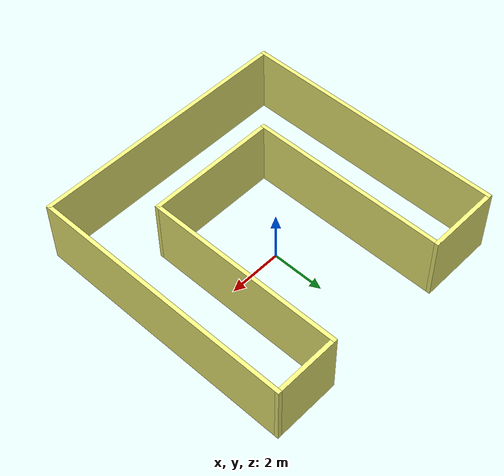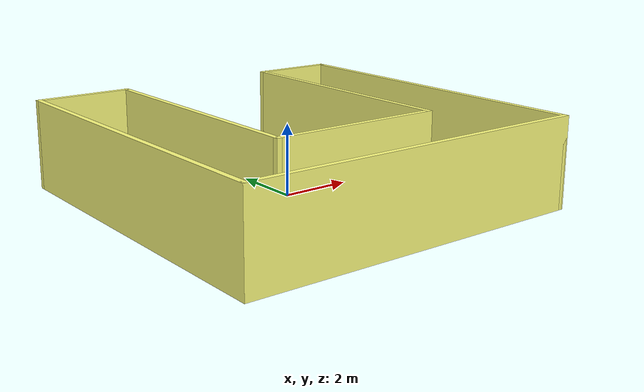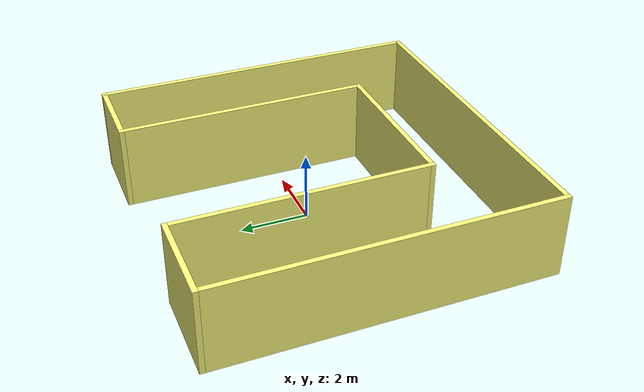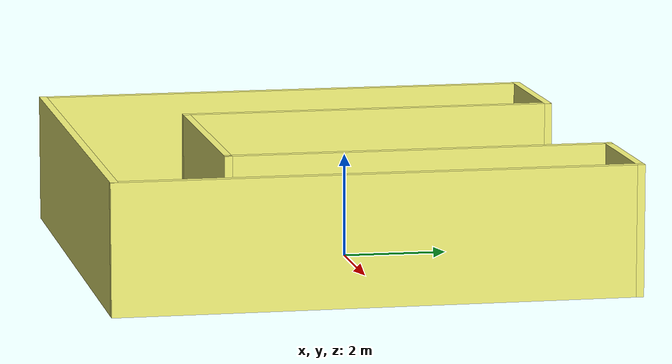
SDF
<?xml version='1.0'?>
<sdf version='1.6'>
  <model name='Gazebo_World_Layout'>
    <pose frame=''>-0.048927 -0.306153 0 0 -0 0</pose>
    <link name='Wall_10'>
      <collision name='Wall_10_Collision'>
        <geometry>
          <box>
            <size>7.5 0.15 2.5</size>
          </box>
        </geometry>
        <pose frame=''>0 0 1.25 0 -0 0</pose>
      </collision>
      <visual name='Wall_10_Visual'>
        <pose frame=''>0 0 1.25 0 -0 0</pose>
        <geometry>
          <box>
            <size>7.5 0.15 2.5</size>
          </box>
        </geometry>
        <material>
          <script>
            <uri>file://media/materials/scripts/gazebo.material</uri>
            <name>Gazebo/Grey</name>
          </script>
          <ambient>1 1 0.498039 1</ambient>
        </material>
        <meta>
          <layer>0</layer>
        </meta>
      </visual>
      <pose frame=''>2.575 1.25 0 0 0 -1.5708</pose>
    </link>
    <link name='Wall_11'>
      <collision name='Wall_11_Collision'>
        <geometry>
          <box>
            <size>5 0.15 2.5</size>
          </box>
        </geometry>
        <pose frame=''>0 0 1.25 0 -0 0</pose>
      </collision>
      <visual name='Wall_11_Visual'>
        <pose frame=''>0 0 1.25 0 -0 0</pose>
        <geometry>
          <box>
            <size>5 0.15 2.5</size>
          </box>
        </geometry>
        <material>
          <script>
            <uri>file://media/materials/scripts/gazebo.material</uri>
            <name>Gazebo/Grey</name>
          </script>
          <ambient>1 1 0.498039 1</ambient>
        </material>
        <meta>
          <layer>0</layer>
        </meta>
      </visual>
      <pose frame=''>0.15 -2.425 0 0 -0 3.14159</pose>
    </link>
    <link name='Wall_12'>
      <collision name='Wall_12_Collision'>
        <geometry>
          <box>
            <size>7.48097 0.15 2.5</size>
          </box>
        </geometry>
        <pose frame=''>0 0 1.25 0 -0 0</pose>
      </collision>
      <visual name='Wall_12_Visual'>
        <pose frame=''>0 0 1.25 0 -0 0</pose>
        <geometry>
          <box>
            <size>7.48097 0.15 2.5</size>
          </box>
        </geometry>
        <material>
          <script>
            <uri>file://media/materials/scripts/gazebo.material</uri>
            <name>Gazebo/Grey</name>
          </script>
          <ambient>1 1 0.498039 1</ambient>
        </material>
        <meta>
          <layer>0</layer>
        </meta>
      </visual>
      <pose frame=''>-2.275 1.24049 0 0 -0 1.5708</pose>
    </link>
    <link name='Wall_13'>
      <collision name='Wall_13_Collision'>
        <geometry>
          <box>
            <size>2.8 0.15 2.5</size>
          </box>
        </geometry>
        <pose frame=''>0 0 1.25 0 -0 0</pose>
      </collision>
      <visual name='Wall_13_Visual'>
        <pose frame=''>0 0 1.25 0 -0 0</pose>
        <geometry>
          <box>
            <size>2.8 0.15 2.5</size>
          </box>
        </geometry>
        <material>
          <script>
            <uri>file://media/materials/scripts/gazebo.material</uri>
            <name>Gazebo/Grey</name>
          </script>
          <ambient>1 1 0.498039 1</ambient>
        </material>
        <meta>
          <layer>0</layer>
        </meta>
      </visual>
      <pose frame=''>-3.6 4.92118 0 0 -0 3.14159</pose>
    </link>
    <link name='Wall_6'>
      <collision name='Wall_6_Collision'>
        <geometry>
          <box>
            <size>9.98097 0.15 2.5</size>
          </box>
        </geometry>
        <pose frame=''>0 0 1.25 0 -0 0</pose>
      </collision>
      <visual name='Wall_6_Visual'>
        <pose frame=''>0 0 1.25 0 -0 0</pose>
        <geometry>
          <box>
            <size>9.98097 0.15 2.5</size>
          </box>
        </geometry>
        <material>
          <script>
            <uri>file://media/materials/scripts/gazebo.material</uri>
            <name>Gazebo/Grey</name>
          </script>
          <ambient>1 1 0.498039 1</ambient>
        </material>
        <meta>
          <layer>0</layer>
        </meta>
      </visual>
      <pose frame=''>-4.925 -0.009513 0 0 0 -1.5708</pose>
    </link>
    <link name='Wall_7'>
      <collision name='Wall_7_Collision'>
        <geometry>
          <box>
            <size>10 0.15 2.5</size>
          </box>
        </geometry>
        <pose frame=''>0 0 1.25 0 -0 0</pose>
      </collision>
      <visual name='Wall_7_Visual'>
        <pose frame=''>0 0 1.25 0 -0 0</pose>
        <geometry>
          <box>
            <size>10 0.15 2.5</size>
          </box>
        </geometry>
        <material>
          <script>
            <uri>file://media/materials/scripts/gazebo.material</uri>
            <name>Gazebo/Grey</name>
          </script>
          <ambient>1 1 0.498039 1</ambient>
        </material>
        <meta>
          <layer>0</layer>
        </meta>
      </visual>
      <pose frame=''>0 -4.925 0 0 -0 0</pose>
    </link>
    <link name='Wall_8'>
      <collision name='Wall_8_Collision'>
        <geometry>
          <box>
            <size>10 0.15 2.5</size>
          </box>
        </geometry>
        <pose frame=''>0 0 1.25 0 -0 0</pose>
      </collision>
      <visual name='Wall_8_Visual'>
        <pose frame=''>0 0 1.25 0 -0 0</pose>
        <geometry>
          <box>
            <size>10 0.15 2.5</size>
          </box>
        </geometry>
        <material>
          <script>
            <uri>file://media/materials/scripts/gazebo.material</uri>
            <name>Gazebo/Grey</name>
          </script>
          <ambient>1 1 0.498039 1</ambient>
        </material>
        <meta>
          <layer>0</layer>
        </meta>
      </visual>
      <pose frame=''>4.925 0 0 0 -0 1.5708</pose>
    </link>
    <link name='Wall_9'>
      <collision name='Wall_9_Collision'>
        <geometry>
          <box>
            <size>2.5 0.15 2.5</size>
          </box>
        </geometry>
        <pose frame=''>0 0 1.25 0 -0 0</pose>
      </collision>
      <visual name='Wall_9_Visual'>
        <pose frame=''>0 0 1.25 0 -0 0</pose>
        <geometry>
          <box>
            <size>2.5 0.15 2.5</size>
          </box>
        </geometry>
        <material>
          <script>
            <uri>file://media/materials/scripts/gazebo.material</uri>
            <name>Gazebo/Grey</name>
          </script>
          <ambient>1 1 0.498039 1</ambient>
        </material>
        <meta>
          <layer>0</layer>
        </meta>
      </visual>
      <pose frame=''>3.75 4.925 0 0 -0 3.14159</pose>
    </link>
    <static>1</static>
  </model>
</sdf>
